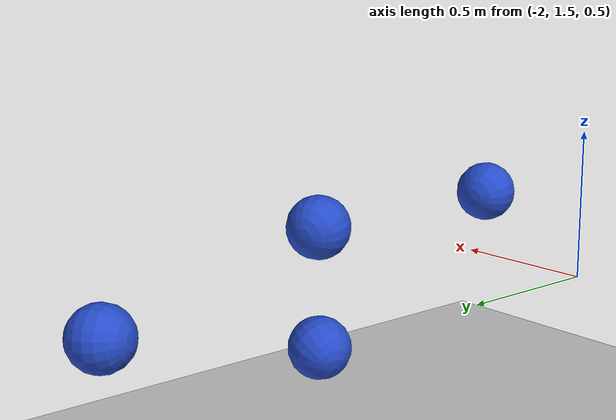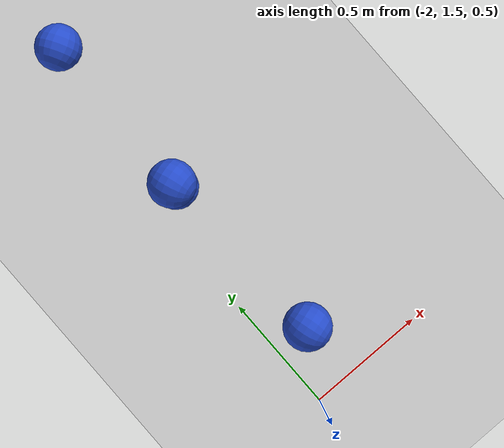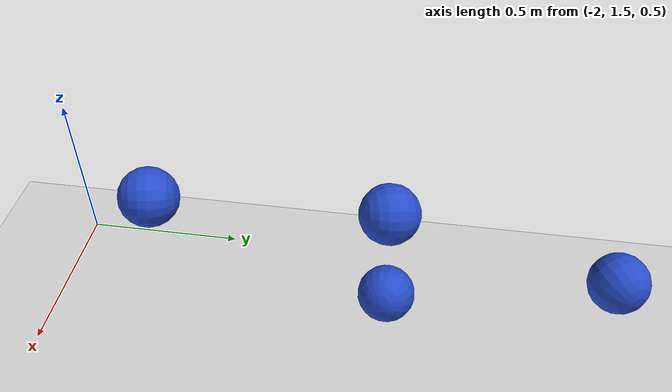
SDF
<sdf version="1.7">
 <world name="default">
  <model name="ground_plane">
   <static>1</static>
   <link name="link">
    <collision name="collision">
     <geometry><plane><normal>0 0 1</normal><size>100 100</size></plane></geometry>
     <surface><friction><ode><mu>100</mu><mu2>50</mu2></ode></friction></surface>
    </collision>
    <visual name="visual">
     <cast_shadows>0</cast_shadows>
     <geometry><plane><normal>0 0 1</normal><size>100 100</size></plane></geometry>
     <material>
      <script><uri>file://media/materials/scripts/gazebo.material</uri><name>Gazebo/Grey</name></script>
     </material>
    </visual>
   </link>
  </model>
  <model name="blue_ball_clone_clone_clone_1_clone_1">
   <link name="link">
    <inertial>
     <mass>0.3</mass>
     <inertia>
      <ixx>0.0029749</ixx>
      <ixy>0</ixy>
      <ixz>0</ixz>
      <iyy>0.0029749</iyy>
      <iyz>0</iyz>
      <izz>0.0029749</izz>
     </inertia>
    </inertial>
    <visual name="visual">
     <geometry><sphere><radius>0.095</radius></sphere></geometry>
     <material>
      <script><name>Gazebo/Blue</name><uri>file://media/materials/scripts/gazebo.material</uri></script>
      <shader type="pixel"><normal_map>__default__</normal_map></shader>
      <ambient>0.071 0.31 0.988 1</ambient>
      <diffuse>0.7 0.7 0.7 1</diffuse>
      <specular>0.01 0.01 0.01 1</specular>
      <emissive>0 0 0 1</emissive>
     </material>
    </visual>
    <collision name="collision">
     <geometry><sphere><radius>0.095</radius></sphere></geometry>
     <surface>
      <friction>
       <ode><mu>0.01</mu><mu2>0.09</mu2><fdir1>0 0 0</fdir1><slip1>0</slip1><slip2>0</slip2></ode>
       <torsional>
        <coefficient>1</coefficient>
        <patch_radius>0</patch_radius>
        <surface_radius>0</surface_radius>
        <use_patch_radius>1</use_patch_radius>
        <ode><slip>0</slip></ode>
       </torsional>
      </friction>
      <bounce><restitution_coefficient>0</restitution_coefficient><threshold>1e+06</threshold></bounce>
      <contact>
       <collide_without_contact>0</collide_without_contact>
       <collide_without_contact_bitmask>1</collide_without_contact_bitmask>
       <collide_bitmask>1</collide_bitmask>
       <ode>
        <soft_cfm>0</soft_cfm>
        <soft_erp>0.2</soft_erp>
        <kp>1e+13</kp>
        <kd>1</kd>
        <max_vel>0.01</max_vel>
        <min_depth>0</min_depth>
       </ode>
       <bullet>
        <split_impulse>1</split_impulse>
        <split_impulse_penetration_threshold>-0.01</split_impulse_penetration_threshold>
        <soft_cfm>0</soft_cfm>
        <soft_erp>0.2</soft_erp>
        <kp>1e+13</kp>
        <kd>1</kd>
       </bullet>
      </contact>
     </surface>
    </collision>
   </link>
   <static>0</static>
   <pose>-1.83795 1.79749 0.814975 1.67834 0.284996 -2.82754</pose>
  </model>
  <model name="red_ball">
   <link name="link">
    <inertial>
     <mass>2</mass>
     <inertia><ixx>0.00722</ixx><ixy>0</ixy><ixz>0</ixz><iyy>0.00722</iyy><iyz>0</iyz><izz>0.00722</izz></inertia>
    </inertial>
    <visual name="visual">
     <geometry><sphere><radius>0.095</radius></sphere></geometry>
     <material>
      <script><name>Gazebo/Blue</name><uri>file://media/materials/scripts/gazebo.material</uri></script>
      <shader type="pixel"><normal_map>__default__</normal_map></shader>
      <ambient>0.988 0 0 1</ambient>
      <diffuse>0.7 0.7 0.7 1</diffuse>
      <specular>0.01 0.01 0.01 1</specular>
      <emissive>0 0 0 1</emissive>
     </material>
    </visual>
    <collision name="collision">
     <geometry><sphere><radius>0.095</radius></sphere></geometry>
     <surface>
      <friction>
       <ode><mu>0.17</mu><mu2>0.17</mu2><fdir1>0 0 0</fdir1><slip1>0</slip1><slip2>0</slip2></ode>
       <torsional>
        <coefficient>1</coefficient>
        <patch_radius>0</patch_radius>
        <surface_radius>0</surface_radius>
        <use_patch_radius>1</use_patch_radius>
        <ode><slip>0</slip></ode>
       </torsional>
      </friction>
      <bounce><restitution_coefficient>0</restitution_coefficient><threshold>1e+06</threshold></bounce>
      <contact>
       <collide_without_contact>0</collide_without_contact>
       <collide_without_contact_bitmask>1</collide_without_contact_bitmask>
       <collide_bitmask>1</collide_bitmask>
       <ode>
        <soft_cfm>0</soft_cfm>
        <soft_erp>0.2</soft_erp>
        <kp>1e+13</kp>
        <kd>1</kd>
        <max_vel>0.01</max_vel>
        <min_depth>0</min_depth>
       </ode>
       <bullet>
        <split_impulse>1</split_impulse>
        <split_impulse_penetration_threshold>-0.01</split_impulse_penetration_threshold>
        <soft_cfm>0</soft_cfm>
        <soft_erp>0.2</soft_erp>
        <kp>1e+13</kp>
        <kd>1</kd>
       </bullet>
      </contact>
     </surface>
    </collision>
   </link>
   <static>0</static>
   <pose>-1.87467 2.53995 0.449493 -0.085466 1.13722 -0.235574</pose>
  </model>
  <model name="red_ball_clone_0">
   <link name="link">
    <inertial>
     <mass>0.3</mass>
     <inertia>
      <ixx>0.001083</ixx>
      <ixy>0</ixy>
      <ixz>0</ixz>
      <iyy>0.001083</iyy>
      <iyz>0</iyz>
      <izz>0.001083</izz>
     </inertia>
    </inertial>
    <visual name="visual">
     <geometry><sphere><radius>0.095</radius></sphere></geometry>
     <material>
      <script><name>Gazebo/Blue</name><uri>file://media/materials/scripts/gazebo.material</uri></script>
      <shader type="pixel"><normal_map>__default__</normal_map></shader>
      <ambient>0.988 0 0 1</ambient>
      <diffuse>0.7 0.7 0.7 1</diffuse>
      <specular>0.01 0.01 0.01 1</specular>
      <emissive>0 0 0 1</emissive>
     </material>
    </visual>
    <collision name="collision">
     <geometry><sphere><radius>0.095</radius></sphere></geometry>
     <surface>
      <friction>
       <ode><mu>0.17</mu><mu2>0.17</mu2><fdir1>0 0 0</fdir1><slip1>0</slip1><slip2>0</slip2></ode>
       <torsional>
        <coefficient>1</coefficient>
        <patch_radius>0</patch_radius>
        <surface_radius>0</surface_radius>
        <use_patch_radius>1</use_patch_radius>
        <ode><slip>0</slip></ode>
       </torsional>
      </friction>
      <bounce><restitution_coefficient>0</restitution_coefficient><threshold>1e+06</threshold></bounce>
      <contact>
       <collide_without_contact>0</collide_without_contact>
       <collide_without_contact_bitmask>1</collide_without_contact_bitmask>
       <collide_bitmask>1</collide_bitmask>
       <ode>
        <soft_cfm>0</soft_cfm>
        <soft_erp>0.2</soft_erp>
        <kp>1e+13</kp>
        <kd>1</kd>
        <max_vel>0.01</max_vel>
        <min_depth>0</min_depth>
       </ode>
       <bullet>
        <split_impulse>1</split_impulse>
        <split_impulse_penetration_threshold>-0.01</split_impulse_penetration_threshold>
        <soft_cfm>0</soft_cfm>
        <soft_erp>0.2</soft_erp>
        <kp>1e+13</kp>
        <kd>1</kd>
       </bullet>
      </contact>
     </surface>
    </collision>
   </link>
   <static>0</static>
   <pose>-1.87131 2.53839 0.813254 -1.2217 1.10876 -2.48626</pose>
  </model>
  <model name="red_ball_clone_0_clone">
   <link name="link">
    <inertial>
     <mass>0.3</mass>
     <inertia>
      <ixx>0.001083</ixx>
      <ixy>0</ixy>
      <ixz>0</ixz>
      <iyy>0.001083</iyy>
      <iyz>0</iyz>
      <izz>0.001083</izz>
     </inertia>
    </inertial>
    <visual name="visual">
     <geometry><sphere><radius>0.095</radius></sphere></geometry>
     <material>
      <script><name>Gazebo/Blue</name><uri>file://media/materials/scripts/gazebo.material</uri></script>
      <shader type="pixel"><normal_map>__default__</normal_map></shader>
      <ambient>0.988 0 0 1</ambient>
      <diffuse>0.7 0.7 0.7 1</diffuse>
      <specular>0.01 0.01 0.01 1</specular>
      <emissive>0 0 0 1</emissive>
     </material>
    </visual>
    <collision name="collision">
     <geometry><sphere><radius>0.095</radius></sphere></geometry>
     <surface>
      <friction>
       <ode><mu>2.07</mu><mu2>2.07</mu2><fdir1>0 0 0</fdir1><slip1>0</slip1><slip2>0</slip2></ode>
       <torsional>
        <coefficient>1</coefficient>
        <patch_radius>0</patch_radius>
        <surface_radius>0</surface_radius>
        <use_patch_radius>1</use_patch_radius>
        <ode><slip>0</slip></ode>
       </torsional>
      </friction>
      <bounce><restitution_coefficient>0</restitution_coefficient><threshold>1e+06</threshold></bounce>
      <contact>
       <collide_without_contact>0</collide_without_contact>
       <collide_without_contact_bitmask>1</collide_without_contact_bitmask>
       <collide_bitmask>1</collide_bitmask>
       <ode>
        <soft_cfm>0</soft_cfm>
        <soft_erp>0.2</soft_erp>
        <kp>1e+13</kp>
        <kd>1</kd>
        <max_vel>0.01</max_vel>
        <min_depth>0</min_depth>
       </ode>
       <bullet>
        <split_impulse>1</split_impulse>
        <split_impulse_penetration_threshold>-0.01</split_impulse_penetration_threshold>
        <soft_cfm>0</soft_cfm>
        <soft_erp>0.2</soft_erp>
        <kp>1e+13</kp>
        <kd>1</kd>
       </bullet>
      </contact>
     </surface>
    </collision>
   </link>
   <static>0</static>
   <pose>-1.86183 3.25037 0.630847 1.49659 -0.715639 -0.987877</pose>
  </model>
 </world>
</sdf>
